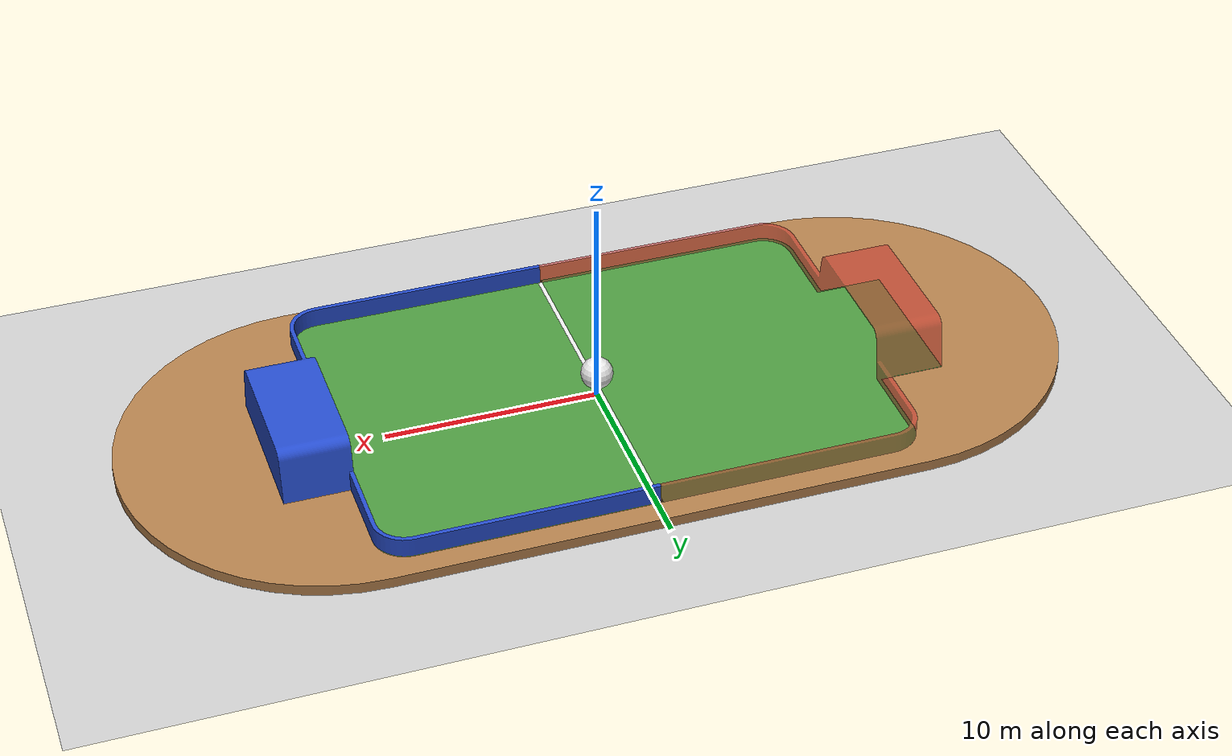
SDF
<sdf version="1.7">
 <world name="default">
  <light name="sun" type="directional">
   <pose>0 0 10 0 -0 0</pose>
   <diffuse>0.8 0.8 0.8 1</diffuse>
   <specular>0.2 0.2 0.2 1</specular>
   <attenuation>
    <range>1000</range>
    <constant>0.9</constant>
    <linear>0.01</linear>
    <quadratic>0.001</quadratic>
   </attenuation>
   <direction>-0.5 0.1 -0.9</direction>
   <spot><inner_angle>0</inner_angle><outer_angle>0</outer_angle><falloff>0</falloff></spot>
  </light>
  <model name="ground_plane">
   <static>1</static>
   <link name="link">
    <collision name="collision">
     <geometry><plane><normal>0 0 1</normal><size>100 100</size></plane></geometry>
     <surface><friction><ode><mu>100</mu><mu2>50</mu2></ode></friction></surface>
    </collision>
    <visual name="visual">
     <cast_shadows>0</cast_shadows>
     <geometry><plane><normal>0 0 1</normal><size>100 100</size></plane></geometry>
     <material>
      <script><uri>file://media/materials/scripts/gazebo.material</uri><name>Gazebo/Grey</name></script>
     </material>
    </visual>
   </link>
  </model>
  <gravity>0 0 -9.8</gravity>
  <magnetic_field>6e-06 2.3e-05 -4.2e-05</magnetic_field>
  <atmosphere type="adiabatic"/>
  <physics type="ode">
   <max_step_size>0.001</max_step_size>
   <real_time_factor>1</real_time_factor>
   <real_time_update_rate>1000</real_time_update_rate>
  </physics>
  <scene><ambient>0.4 0.4 0.4 1</ambient><background>0.7 0.7 0.7 1</background><shadows>1</shadows></scene>
  <audio><device>default</device></audio>
  <spherical_coordinates>
   <surface_model>EARTH_WGS84</surface_model>
   <latitude_deg>0</latitude_deg>
   <longitude_deg>0</longitude_deg>
   <elevation>0</elevation>
   <heading_deg>0</heading_deg>
  </spherical_coordinates>
  <model name="arena">
   <link name="ground">
    <inertial>
     <pose>0 0 0.317182 0 -0 0</pose>
     <mass>415972</mass>
     <inertia>
      <ixx>1.23505e+07</ixx>
      <ixy>-3379.61</ixy>
      <ixz>4.17569e-09</ixz>
      <iyy>5.75354e+07</iyy>
      <iyz>7.66559e-10</iyz>
      <izz>6.97722e+07</izz>
     </inertia>
    </inertial>
    <collision name="ground_collision">
     <geometry>
      <mesh>
       <scale>1 1 1</scale>
       <uri>file:///home/pranavlakshmanan/ros2_ws/install/project/share/project/meshes/ground.STL</uri>
      </mesh>
     </geometry>
    </collision>
    <collision name="ground_fixed_joint_lump__blue_barrier_collision_1">
     <geometry>
      <mesh>
       <scale>1 1 1</scale>
       <uri>file:///home/pranavlakshmanan/ros2_ws/install/project/share/project/meshes/blue_barrier.STL</uri>
      </mesh>
     </geometry>
    </collision>
    <collision name="ground_fixed_joint_lump__grass_collision_2">
     <geometry>
      <mesh>
       <scale>1 1 1</scale>
       <uri>file:///home/pranavlakshmanan/ros2_ws/install/project/share/project/meshes/grass.STL</uri>
      </mesh>
     </geometry>
    </collision>
    <collision name="ground_fixed_joint_lump__line_collision_3">
     <geometry>
      <mesh>
       <scale>1 1 1</scale>
       <uri>file:///home/pranavlakshmanan/ros2_ws/install/project/share/project/meshes/line.STL</uri>
      </mesh>
     </geometry>
    </collision>
    <collision name="ground_fixed_joint_lump__red_barrier_collision_4">
     <geometry>
      <mesh>
       <scale>1 1 1</scale>
       <uri>file:///home/pranavlakshmanan/ros2_ws/install/project/share/project/meshes/red_barrier.STL</uri>
      </mesh>
     </geometry>
    </collision>
    <visual name="ground_visual">
     <geometry>
      <mesh>
       <scale>1 1 1</scale>
       <uri>file:///home/pranavlakshmanan/ros2_ws/install/project/share/project/meshes/ground.STL</uri>
      </mesh>
     </geometry>
     <material>
      <script><name>Gazebo/WoodPallet</name><uri>file://media/materials/scripts/gazebo.material</uri></script>
     </material>
    </visual>
    <visual name="ground_fixed_joint_lump__blue_barrier_visual_1">
     <geometry>
      <mesh>
       <scale>1 1 1</scale>
       <uri>file:///home/pranavlakshmanan/ros2_ws/install/project/share/project/meshes/blue_barrier.STL</uri>
      </mesh>
     </geometry>
     <material>
      <script><name>Gazebo/BlueLaser</name><uri>file://media/materials/scripts/gazebo.material</uri></script>
     </material>
    </visual>
    <visual name="ground_fixed_joint_lump__grass_visual_2">
     <geometry>
      <mesh>
       <scale>1 1 1</scale>
       <uri>file:///home/pranavlakshmanan/ros2_ws/install/project/share/project/meshes/grass.STL</uri>
      </mesh>
     </geometry>
     <material>
      <script><name>Gazebo/Grass</name><uri>file://media/materials/scripts/gazebo.material</uri></script>
     </material>
    </visual>
    <visual name="ground_fixed_joint_lump__line_visual_3">
     <geometry>
      <mesh>
       <scale>1 1 1</scale>
       <uri>file:///home/pranavlakshmanan/ros2_ws/install/project/share/project/meshes/line.STL</uri>
      </mesh>
     </geometry>
     <material>
      <script><name>Gazebo/WhiteGlow</name><uri>file://media/materials/scripts/gazebo.material</uri></script>
     </material>
    </visual>
    <visual name="ground_fixed_joint_lump__red_barrier_visual_4">
     <geometry>
      <mesh>
       <scale>1 1 1</scale>
       <uri>file:///home/pranavlakshmanan/ros2_ws/install/project/share/project/meshes/red_barrier.STL</uri>
      </mesh>
     </geometry>
     <material>
      <script><name>Gazebo/RedTransparent</name><uri>file://media/materials/scripts/gazebo.material</uri></script>
     </material>
    </visual>
    <self_collide>1</self_collide>
   </link>
   <pose>-0 0 -0.007096 0 -0 0</pose>
  </model>
  <model name="ball">
   <link name="ball_link">
    <inertial>
     <mass>0.0001</mass>
     <inertia><ixx>0.1</ixx><ixy>0</ixy><ixz>0</ixz><iyy>0.1</iyy><iyz>0</iyz><izz>0.1</izz></inertia>
    </inertial>
    <collision name="ball_link_collision"><geometry><sphere><radius>0.75</radius></sphere></geometry></collision>
    <visual name="ball_link_visual">
     <geometry><sphere><radius>0.75</radius></sphere></geometry>
     <material>
      <script><name>Gazebo/White</name><uri>file://media/materials/scripts/gazebo.material</uri></script>
     </material>
    </visual>
    <self_collide>1</self_collide>
   </link>
   <pose>-0 0 1.2429 0 -0 0</pose>
  </model>
 </world>
</sdf>
